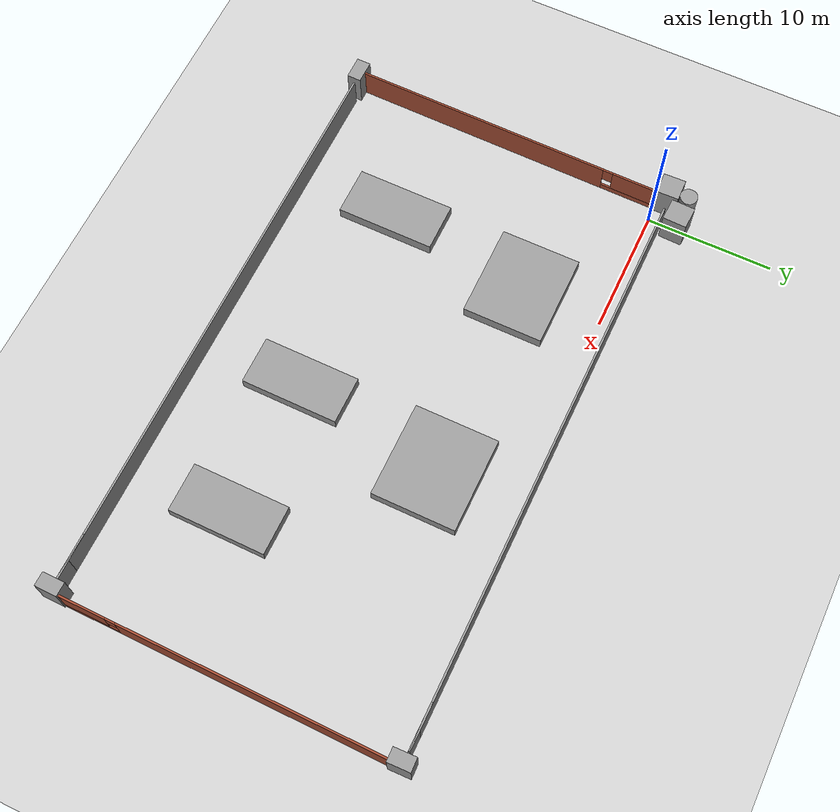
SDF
<sdf version="1.7">
 <world name="default">
  <light name="sun" type="directional">
   <pose>0 0 10 0 -0 0</pose>
   <diffuse>0.8 0.8 0.8 1</diffuse>
   <specular>0.2 0.2 0.2 1</specular>
   <attenuation>
    <range>1000</range>
    <constant>0.9</constant>
    <linear>0.01</linear>
    <quadratic>0.001</quadratic>
   </attenuation>
   <direction>-0.5 0.1 -0.9</direction>
   <spot><inner_angle>0</inner_angle><outer_angle>0</outer_angle><falloff>0</falloff></spot>
  </light>
  <model name="ground_plane">
   <static>1</static>
   <link name="link">
    <collision name="collision">
     <geometry><plane><normal>0 0 1</normal><size>100 100</size></plane></geometry>
     <surface>
      <contact><collide_bitmask>65535</collide_bitmask></contact>
      <friction><ode><mu>100</mu><mu2>50</mu2></ode></friction>
     </surface>
    </collision>
    <visual name="visual">
     <cast_shadows>0</cast_shadows>
     <geometry><plane><normal>0 0 1</normal><size>100 100</size></plane></geometry>
     <material>
      <script><uri>file://media/materials/scripts/gazebo.material</uri><name>Gazebo/Grey</name></script>
     </material>
    </visual>
   </link>
  </model>
  <gravity>0 0 -9.8</gravity>
  <magnetic_field>6e-06 2.3e-05 -4.2e-05</magnetic_field>
  <atmosphere type="adiabatic"/>
  <physics type="ode">
   <max_step_size>0.001</max_step_size>
   <real_time_factor>1</real_time_factor>
   <real_time_update_rate>1000</real_time_update_rate>
  </physics>
  <scene><ambient>0.4 0.4 0.4 1</ambient><background>0.7 0.7 0.7 1</background><shadows>1</shadows></scene>
  <spherical_coordinates>
   <surface_model>EARTH_WGS84</surface_model>
   <latitude_deg>0</latitude_deg>
   <longitude_deg>0</longitude_deg>
   <elevation>0</elevation>
   <heading_deg>0</heading_deg>
  </spherical_coordinates>
  <model name="Warehouse_PRM">
   <pose>-1.30877 -12.6539 0 0 -0 1.71992</pose>
   <link name="Wall_0">
    <pose>-0 -0.046739 0 0 -0 -0.1599</pose>
    <visual name="Wall_0_Visual_0">
     <pose>-2.21857 0 1.25 0 -0 0</pose>
     <geometry><box><size>20.5629 0.15 2.5</size></box></geometry>
     <material>
      <script><uri>file://media/materials/scripts/gazebo.material</uri><name>Gazebo/Bricks</name></script>
      <ambient>1 0.764706 0.305882 1</ambient>
     </material>
     <meta><layer>0</layer></meta>
    </visual>
    <collision name="Wall_0_Collision_0">
     <geometry><box><size>20.5629 0.15 2.5</size></box></geometry>
     <pose>-2.21857 0 1.25 0 -0 0</pose>
    </collision>
    <visual name="Wall_0_Visual_1">
     <pose>10.2814 0 0.25 0 -0 0</pose>
     <geometry><box><size>4.43714 0.15 0.5</size></box></geometry>
     <material>
      <script><uri>file://media/materials/scripts/gazebo.material</uri><name>Gazebo/Bricks</name></script>
      <ambient>1 0.764706 0.305882 1</ambient>
     </material>
     <meta><layer>0</layer></meta>
    </visual>
    <collision name="Wall_0_Collision_1">
     <geometry><box><size>4.43714 0.15 0.5</size></box></geometry>
     <pose>10.2814 0 0.25 0 -0 0</pose>
    </collision>
    <visual name="Wall_0_Visual_2">
     <pose>10.6814 0 1.5 0 -0 0</pose>
     <geometry><box><size>3.63714 0.15 2</size></box></geometry>
     <material>
      <script><uri>file://media/materials/scripts/gazebo.material</uri><name>Gazebo/Bricks</name></script>
      <ambient>1 0.764706 0.305882 1</ambient>
     </material>
     <meta><layer>0</layer></meta>
    </visual>
    <collision name="Wall_0_Collision_2">
     <geometry><box><size>3.63714 0.15 2</size></box></geometry>
     <pose>10.6814 0 1.5 0 -0 0</pose>
    </collision>
    <visual name="Wall_0_Visual_3">
     <pose>8.46286 0 1.9 0 -0 0</pose>
     <geometry><box><size>0.8 0.15 1.2</size></box></geometry>
     <material>
      <script><uri>file://media/materials/scripts/gazebo.material</uri><name>Gazebo/Bricks</name></script>
      <ambient>1 0.764706 0.305882 1</ambient>
     </material>
     <meta><layer>0</layer></meta>
    </visual>
    <collision name="Wall_0_Collision_3">
     <geometry><box><size>0.8 0.15 1.2</size></box></geometry>
     <pose>8.46286 0 1.9 0 -0 0</pose>
    </collision>
   </link>
   <static>1</static>
  </model>
  <model name="Warehouse_PRM_clone">
   <pose>45.9373 -12.5634 0 0 0 -1.42124</pose>
   <link name="Wall_0">
    <pose>-0 -0.046739 0 0 -0 -0.1599</pose>
    <visual name="Wall_0_Visual_0">
     <pose>-2.21857 0 1.25 0 -0 0</pose>
     <geometry><box><size>20.5629 0.15 2.5</size></box></geometry>
     <material>
      <script><uri>file://media/materials/scripts/gazebo.material</uri><name>Gazebo/Bricks</name></script>
      <ambient>1 0.764706 0.305882 1</ambient>
     </material>
     <meta><layer>0</layer></meta>
    </visual>
    <collision name="Wall_0_Collision_0">
     <geometry><box><size>20.5629 0.15 2.5</size></box></geometry>
     <pose>-2.21857 0 1.25 0 -0 0</pose>
    </collision>
    <visual name="Wall_0_Visual_1">
     <pose>10.2814 0 0.25 0 -0 0</pose>
     <geometry><box><size>4.43714 0.15 0.5</size></box></geometry>
     <material>
      <script><uri>file://media/materials/scripts/gazebo.material</uri><name>Gazebo/Bricks</name></script>
      <ambient>1 0.764706 0.305882 1</ambient>
     </material>
     <meta><layer>0</layer></meta>
    </visual>
    <collision name="Wall_0_Collision_1">
     <geometry><box><size>4.43714 0.15 0.5</size></box></geometry>
     <pose>10.2814 0 0.25 0 -0 0</pose>
    </collision>
    <visual name="Wall_0_Visual_2">
     <pose>10.6814 0 1.5 0 -0 0</pose>
     <geometry><box><size>3.63714 0.15 2</size></box></geometry>
     <material>
      <script><uri>file://media/materials/scripts/gazebo.material</uri><name>Gazebo/Bricks</name></script>
      <ambient>1 0.764706 0.305882 1</ambient>
     </material>
     <meta><layer>0</layer></meta>
    </visual>
    <collision name="Wall_0_Collision_2">
     <geometry><box><size>3.63714 0.15 2</size></box></geometry>
     <pose>10.6814 0 1.5 0 -0 0</pose>
    </collision>
    <visual name="Wall_0_Visual_3">
     <pose>8.46286 0 1.9 0 -0 0</pose>
     <geometry><box><size>0.8 0.15 1.2</size></box></geometry>
     <material>
      <script><uri>file://media/materials/scripts/gazebo.material</uri><name>Gazebo/Bricks</name></script>
      <ambient>1 0.764706 0.305882 1</ambient>
     </material>
     <meta><layer>0</layer></meta>
    </visual>
    <collision name="Wall_0_Collision_3">
     <geometry><box><size>0.8 0.15 1.2</size></box></geometry>
     <pose>8.46286 0 1.9 0 -0 0</pose>
    </collision>
   </link>
   <static>1</static>
  </model>
  <model name="PRM_wall2">
   <pose>22.3646 -15.5942 0 0 -0 1.56629</pose>
   <link name="Wall_7">
    <collision name="Wall_7_Collision">
     <geometry><box><size>45 0.15 2.5</size></box></geometry>
     <pose>0 0 1.25 0 -0 0</pose>
    </collision>
    <visual name="Wall_7_Visual">
     <pose>0 0 1.25 0 -0 0</pose>
     <geometry><box><size>45 0.15 2.5</size></box></geometry>
     <material>
      <script><uri>file://media/materials/scripts/gazebo.material</uri><name>Gazebo/Grey</name></script>
      <ambient>1 1 1 1</ambient>
     </material>
     <meta><layer>0</layer></meta>
    </visual>
    <pose>-10.0674 -0 0 0 -0 -1.5708</pose>
   </link>
   <link name="Wall_8">
    <collision name="Wall_8_Collision">
     <geometry><box><size>3.55 0.15 2.5</size></box></geometry>
     <pose>0 0 1.25 0 -0 0</pose>
    </collision>
    <visual name="Wall_8_Visual">
     <pose>0 0 1.25 0 -0 0</pose>
     <geometry><box><size>3.55 0.15 2.5</size></box></geometry>
     <material>
      <script><uri>file://media/materials/scripts/gazebo.material</uri><name>Gazebo/Grey</name></script>
      <ambient>1 1 1 1</ambient>
     </material>
     <meta><layer>0</layer></meta>
    </visual>
    <pose>-10.0675 -20.7249 0 0 -0 1.57088</pose>
   </link>
   <static>1</static>
  </model>
  <model name="PRM_wall2_clone">
   <pose>22.517 11.0358 0 0 -0 1.57163</pose>
   <link name="Wall_7">
    <collision name="Wall_7_Collision">
     <geometry><box><size>45 0.15 2.5</size></box></geometry>
     <pose>0 0 1.25 0 -0 0</pose>
    </collision>
    <visual name="Wall_7_Visual">
     <pose>0 0 1.25 0 -0 0</pose>
     <geometry><box><size>45 0.15 2.5</size></box></geometry>
     <material>
      <script><uri>file://media/materials/scripts/gazebo.material</uri><name>Gazebo/Grey</name></script>
      <ambient>1 1 1 1</ambient>
     </material>
     <meta><layer>0</layer></meta>
    </visual>
    <pose>-10.0674 -0 0 0 -0 -1.5708</pose>
   </link>
   <link name="Wall_8">
    <collision name="Wall_8_Collision">
     <geometry><box><size>3.55 0.15 2.5</size></box></geometry>
     <pose>0 0 1.25 0 -0 0</pose>
    </collision>
    <visual name="Wall_8_Visual">
     <pose>0 0 1.25 0 -0 0</pose>
     <geometry><box><size>3.55 0.15 2.5</size></box></geometry>
     <material>
      <script><uri>file://media/materials/scripts/gazebo.material</uri><name>Gazebo/Grey</name></script>
      <ambient>1 1 1 1</ambient>
     </material>
     <meta><layer>0</layer></meta>
    </visual>
    <pose>-10.0675 -20.7249 0 0 -0 1.57088</pose>
   </link>
   <static>1</static>
  </model>
  <model name="unit_box_clone">
   <pose>8 -18 0.5 0 -0 1.56724</pose>
   <link name="link">
    <inertial>
     <mass>1</mass>
     <inertia>
      <ixx>0.166667</ixx>
      <ixy>0</ixy>
      <ixz>0</ixz>
      <iyy>0.166667</iyy>
      <iyz>0</iyz>
      <izz>0.166667</izz>
     </inertia>
    </inertial>
    <collision name="collision"><geometry><box><size>7.70872 3.81066 1</size></box></geometry></collision>
    <visual name="visual">
     <geometry><box><size>7.70872 3.81066 1</size></box></geometry>
     <material>
      <script><name>Gazebo/Grey</name><uri>file://media/materials/scripts/gazebo.material</uri></script>
     </material>
    </visual>
   </link>
   <static>1</static>
  </model>
  <model name="unit_box_clone_clone">
   <pose>24 -18 0.5 0 -0 1.56724</pose>
   <link name="link">
    <inertial>
     <mass>1</mass>
     <inertia>
      <ixx>0.166667</ixx>
      <ixy>0</ixy>
      <ixz>0</ixz>
      <iyy>0.166667</iyy>
      <iyz>0</iyz>
      <izz>0.166667</izz>
     </inertia>
    </inertial>
    <collision name="collision"><geometry><box><size>7.63543 3.75417 1</size></box></geometry></collision>
    <visual name="visual">
     <geometry><box><size>7.63543 3.75417 1</size></box></geometry>
     <material>
      <script><name>Gazebo/Grey</name><uri>file://media/materials/scripts/gazebo.material</uri></script>
     </material>
    </visual>
   </link>
   <static>1</static>
  </model>
  <model name="unit_box_clone_clone_clone">
   <pose>35 -18 0.5 0 -0 1.56724</pose>
   <link name="link">
    <inertial>
     <mass>1</mass>
     <inertia>
      <ixx>0.166667</ixx>
      <ixy>0</ixy>
      <ixz>0</ixz>
      <iyy>0.166667</iyy>
      <iyz>0</iyz>
      <izz>0.166667</izz>
     </inertia>
    </inertial>
    <collision name="collision"><geometry><box><size>7.64177 3.84561 1</size></box></geometry></collision>
    <visual name="visual">
     <geometry><box><size>7.64177 3.84561 1</size></box></geometry>
     <material>
      <script><name>Gazebo/Grey</name><uri>file://media/materials/scripts/gazebo.material</uri></script>
     </material>
    </visual>
   </link>
   <static>1</static>
  </model>
  <model name="unit_box">
   <pose>9.93556 -6.45973 0.5 0 -0 0</pose>
   <link name="link">
    <inertial>
     <mass>1</mass>
     <inertia>
      <ixx>0.166667</ixx>
      <ixy>0</ixy>
      <ixz>0</ixz>
      <iyy>0.166667</iyy>
      <iyz>0</iyz>
      <izz>0.166667</izz>
     </inertia>
    </inertial>
    <collision name="collision"><geometry><box><size>7.33659 6.2946 1</size></box></geometry></collision>
    <visual name="visual">
     <geometry><box><size>7.33659 6.2946 1</size></box></geometry>
     <material>
      <script><name>Gazebo/Grey</name><uri>file://media/materials/scripts/gazebo.material</uri></script>
     </material>
    </visual>
   </link>
   <static>1</static>
  </model>
  <model name="unit_box_clone_0">
   <pose>25.9493 -6.13733 0.5 0 -0 0</pose>
   <link name="link">
    <inertial>
     <mass>1</mass>
     <inertia>
      <ixx>0.166667</ixx>
      <ixy>0</ixy>
      <ixz>0</ixz>
      <iyy>0.166667</iyy>
      <iyz>0</iyz>
      <izz>0.166667</izz>
     </inertia>
    </inertial>
    <collision name="collision"><geometry><box><size>7.49062 6.60895 1</size></box></geometry></collision>
    <visual name="visual">
     <geometry><box><size>7.49062 6.60895 1</size></box></geometry>
     <material>
      <script><name>Gazebo/Grey</name><uri>file://media/materials/scripts/gazebo.material</uri></script>
     </material>
    </visual>
   </link>
   <static>1</static>
  </model>
  <model name="unit_box_0_clone">
   <pose>0.10617 2.13006 1.36709 0 -3e-06 -0.029756</pose>
   <link name="link">
    <inertial>
     <mass>1</mass>
     <inertia>
      <ixx>0.166667</ixx>
      <ixy>0</ixy>
      <ixz>0</ixz>
      <iyy>0.166667</iyy>
      <iyz>0</iyz>
      <izz>0.166667</izz>
     </inertia>
    </inertial>
    <collision name="collision"><geometry><box><size>1.76672 1.86751 2.73418</size></box></geometry></collision>
    <visual name="visual">
     <geometry><box><size>1.76672 1.86751 2.73418</size></box></geometry>
     <material>
      <script><name>Gazebo/Grey</name><uri>file://media/materials/scripts/gazebo.material</uri></script>
     </material>
    </visual>
   </link>
  </model>
  <model name="unit_box_0_clone_clone">
   <pose>-1.85717 0.720274 1.36709 -0 1e-06 -1.54392</pose>
   <link name="link">
    <inertial>
     <mass>1</mass>
     <inertia>
      <ixx>0.166667</ixx>
      <ixy>0</ixy>
      <ixz>0</ixz>
      <iyy>0.166667</iyy>
      <iyz>0</iyz>
      <izz>0.166667</izz>
     </inertia>
    </inertial>
    <collision name="collision"><geometry><box><size>1.76672 1.721 2.73418</size></box></geometry></collision>
    <visual name="visual">
     <geometry><box><size>1.76672 1.721 2.73418</size></box></geometry>
     <material>
      <script><name>Gazebo/Grey</name><uri>file://media/materials/scripts/gazebo.material</uri></script>
     </material>
    </visual>
   </link>
  </model>
  <model name="unit_box_0_clone_clone_clone">
   <pose>45.7179 0.807346 1.36709 0 -1e-06 -1.5436</pose>
   <link name="link">
    <inertial>
     <mass>1</mass>
     <inertia>
      <ixx>0.166667</ixx>
      <ixy>0</ixy>
      <ixz>0</ixz>
      <iyy>0.166667</iyy>
      <iyz>0</iyz>
      <izz>0.166667</izz>
     </inertia>
    </inertial>
    <collision name="collision"><geometry><box><size>1.76672 1.10129 2.73418</size></box></geometry></collision>
    <visual name="visual">
     <geometry><box><size>1.76672 1.10129 2.73418</size></box></geometry>
     <material>
      <script><name>Gazebo/Grey</name><uri>file://media/materials/scripts/gazebo.material</uri></script>
     </material>
    </visual>
   </link>
  </model>
  <model name="unit_box_0_clone_clone_clone_clone">
   <pose>45.3674 -25.9465 1.36709 0 -1e-06 -1.59094</pose>
   <link name="link">
    <inertial>
     <mass>1</mass>
     <inertia>
      <ixx>0.166667</ixx>
      <ixy>0</ixy>
      <ixz>0</ixz>
      <iyy>0.166667</iyy>
      <iyz>0</iyz>
      <izz>0.166667</izz>
     </inertia>
    </inertial>
    <collision name="collision"><geometry><box><size>1.76672 1.10129 2.73418</size></box></geometry></collision>
    <visual name="visual">
     <geometry><box><size>1.76672 1.10129 2.73418</size></box></geometry>
     <material>
      <script><name>Gazebo/Grey</name><uri>file://media/materials/scripts/gazebo.material</uri></script>
     </material>
    </visual>
   </link>
  </model>
  <model name="unit_box_0_clone_clone_clone_clone_0">
   <pose>-1.32164 -25.6978 1.36709 0 -3e-06 3.13253</pose>
   <link name="link">
    <inertial>
     <mass>1</mass>
     <inertia>
      <ixx>0.166667</ixx>
      <ixy>0</ixy>
      <ixz>0</ixz>
      <iyy>0.166667</iyy>
      <iyz>0</iyz>
      <izz>0.166667</izz>
     </inertia>
    </inertial>
    <collision name="collision"><geometry><box><size>1.76672 1.10129 2.73418</size></box></geometry></collision>
    <visual name="visual">
     <geometry><box><size>1.76672 1.10129 2.73418</size></box></geometry>
     <material>
      <script><name>Gazebo/Grey</name><uri>file://media/materials/scripts/gazebo.material</uri></script>
     </material>
    </visual>
   </link>
  </model>
  <model name="unit_cylinder">
   <pose>-1.45463 2.2967 1.46206 0 -0 0.035423</pose>
   <link name="link">
    <inertial>
     <mass>1</mass>
     <inertia><ixx>0.145833</ixx><ixy>0</ixy><ixz>0</ixz><iyy>0.145833</iyy><iyz>0</iyz><izz>0.125</izz></inertia>
    </inertial>
    <collision name="collision">
     <geometry><cylinder><radius>0.681665</radius><length>2.92412</length></cylinder></geometry>
    </collision>
    <visual name="visual">
     <geometry><cylinder><radius>0.681665</radius><length>2.92412</length></cylinder></geometry>
     <material>
      <script><name>Gazebo/Grey</name><uri>file://media/materials/scripts/gazebo.material</uri></script>
     </material>
    </visual>
   </link>
  </model>
 </world>
</sdf>
